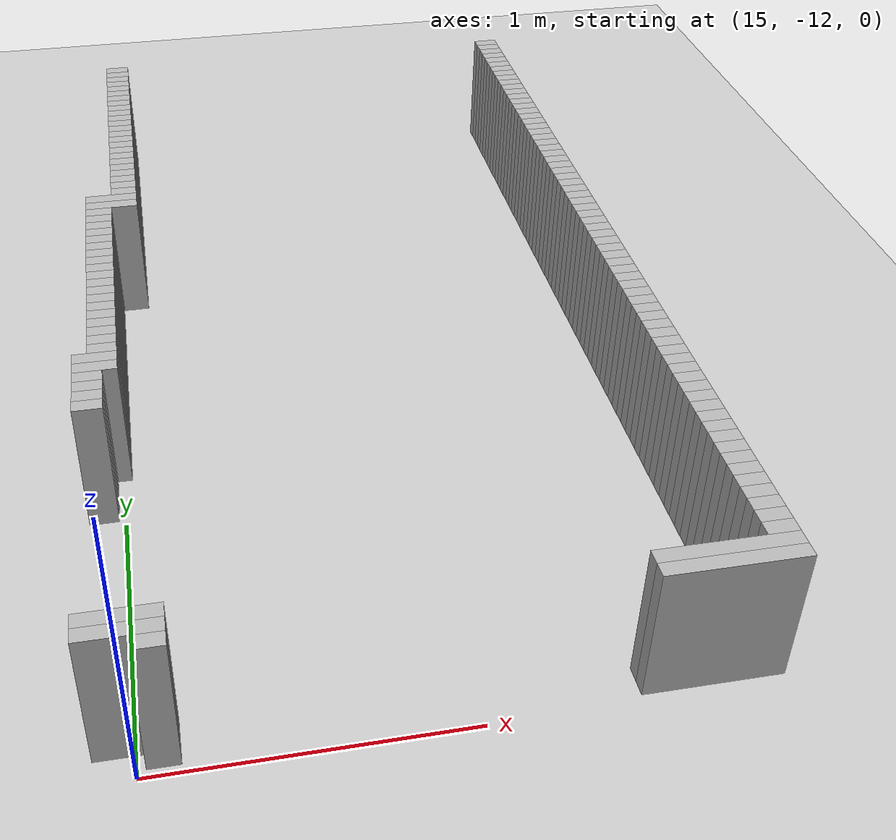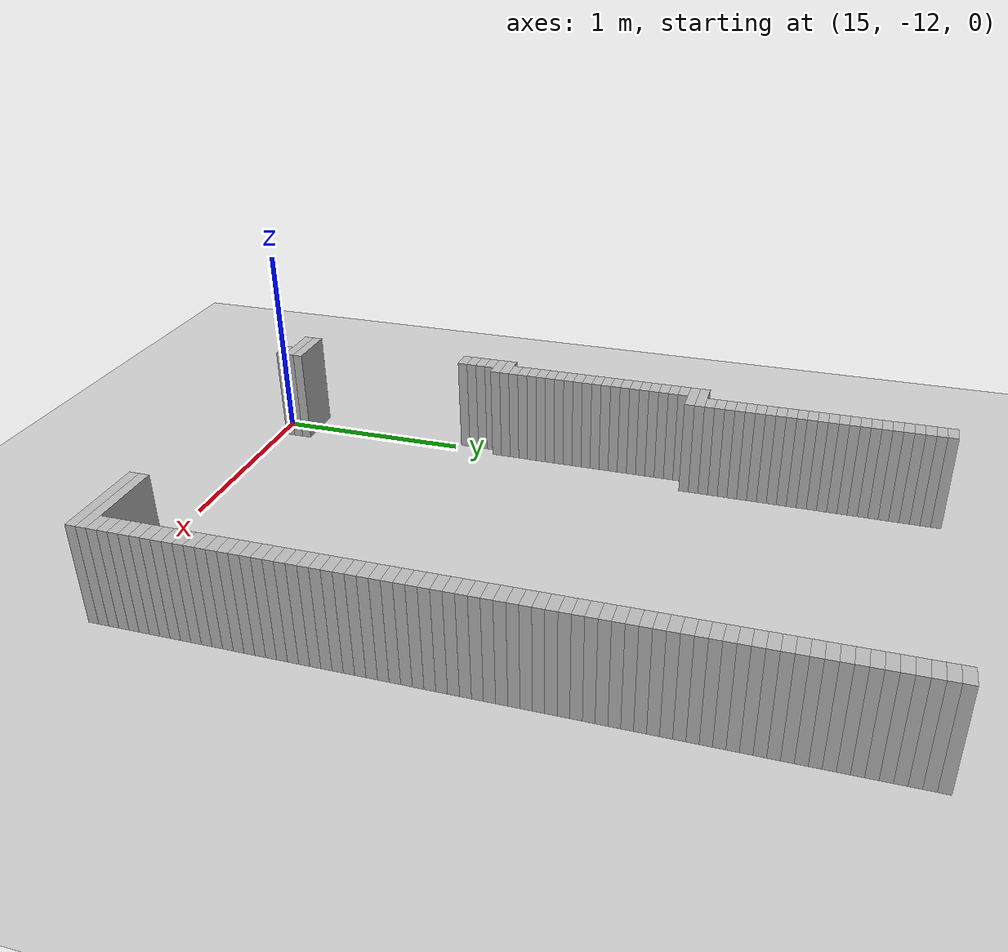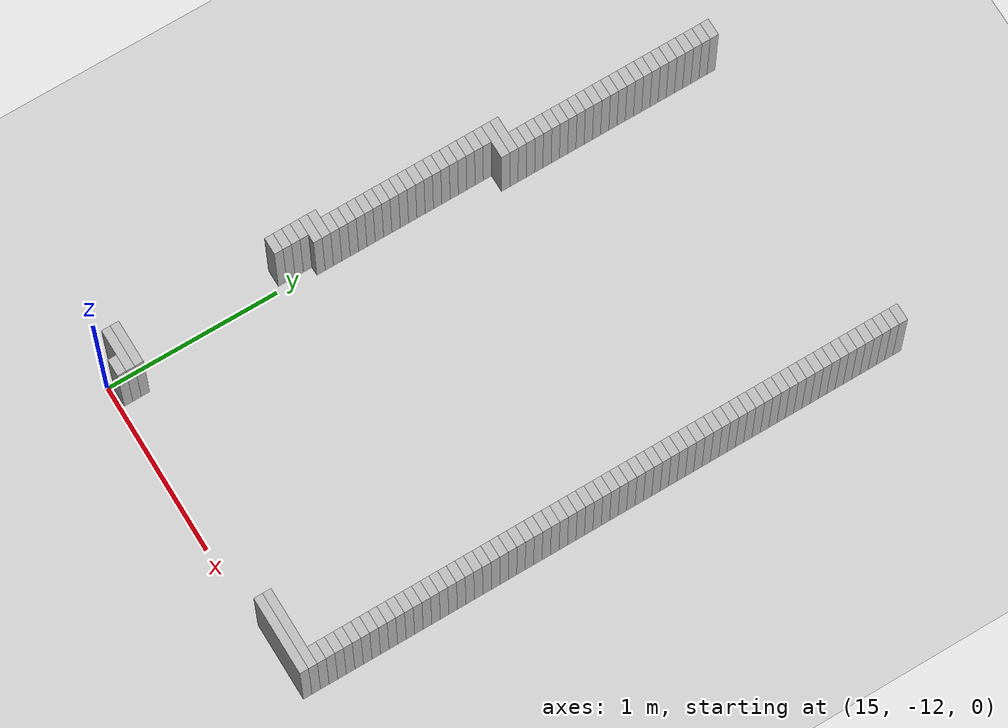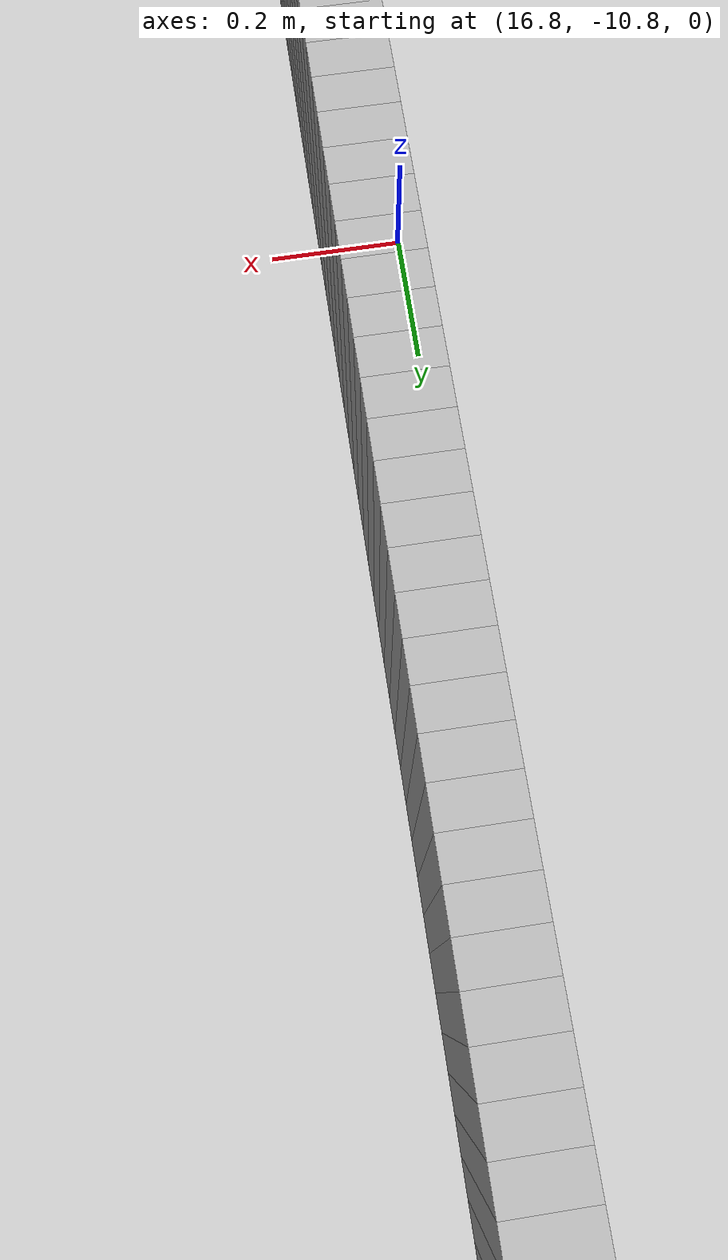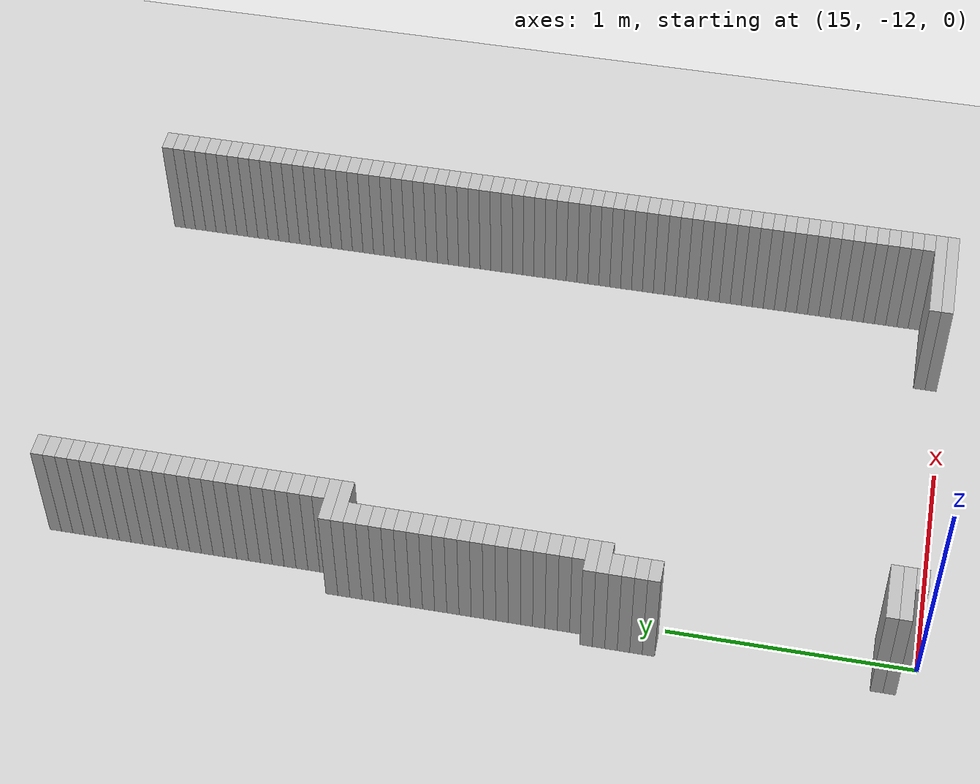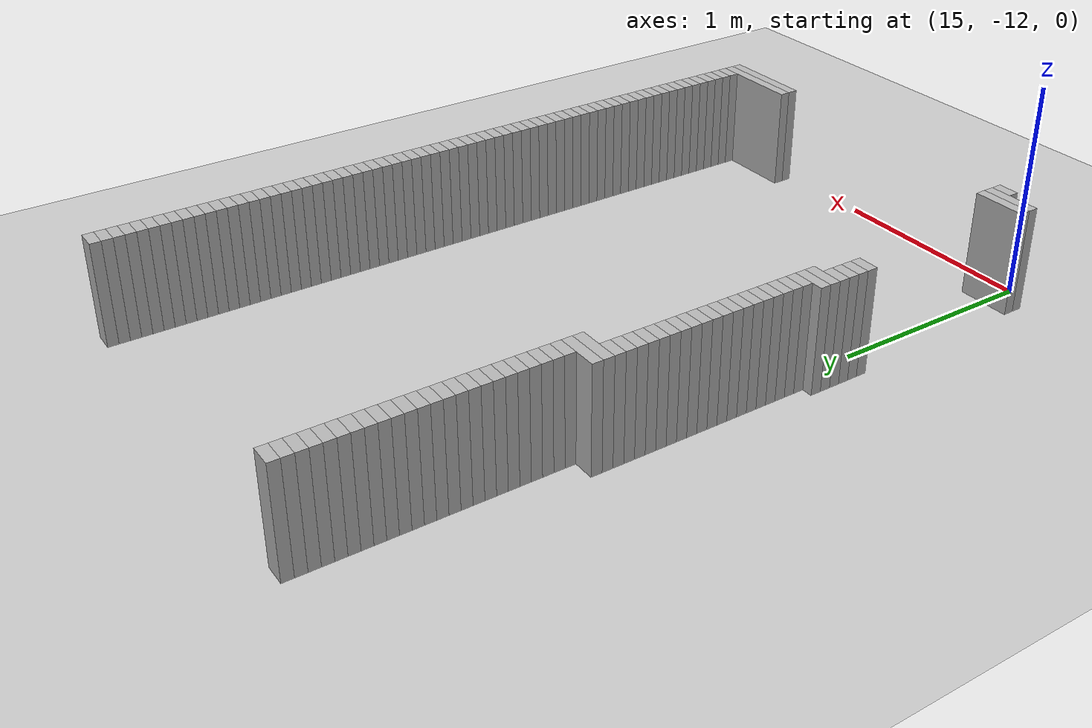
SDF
<sdf version="1.6">
 <world name="optimized_map_world">
  <include><uri>model://sun</uri></include>
  <include><uri>model://ground_plane</uri></include>
  <model name="obstacle_708">
   <static>true</static>
   <link name="link">
    <collision name="collision"><geometry><box><size>0.1 0.05 0.5</size></box></geometry></collision>
    <visual name="visual"><geometry><box><size>0.1 0.05 0.5</size></box></geometry></visual>
   </link>
   <pose>15.075000000000003 -8.45 0.25 0 0 0</pose>
  </model>
  <model name="obstacle_709">
   <static>true</static>
   <link name="link">
    <collision name="collision"><geometry><box><size>0.1 0.05 0.5</size></box></geometry></collision>
    <visual name="visual"><geometry><box><size>0.1 0.05 0.5</size></box></geometry></visual>
   </link>
   <pose>16.875000000000004 -8.45 0.25 0 0 0</pose>
  </model>
  <model name="obstacle_712">
   <static>true</static>
   <link name="link">
    <collision name="collision"><geometry><box><size>0.1 0.05 0.5</size></box></geometry></collision>
    <visual name="visual"><geometry><box><size>0.1 0.05 0.5</size></box></geometry></visual>
   </link>
   <pose>15.075000000000003 -8.5 0.25 0 0 0</pose>
  </model>
  <model name="obstacle_713">
   <static>true</static>
   <link name="link">
    <collision name="collision"><geometry><box><size>0.1 0.05 0.5</size></box></geometry></collision>
    <visual name="visual"><geometry><box><size>0.1 0.05 0.5</size></box></geometry></visual>
   </link>
   <pose>16.875000000000004 -8.5 0.25 0 0 0</pose>
  </model>
  <model name="obstacle_716">
   <static>true</static>
   <link name="link">
    <collision name="collision"><geometry><box><size>0.1 0.05 0.5</size></box></geometry></collision>
    <visual name="visual"><geometry><box><size>0.1 0.05 0.5</size></box></geometry></visual>
   </link>
   <pose>15.075000000000003 -8.55 0.25 0 0 0</pose>
  </model>
  <model name="obstacle_717">
   <static>true</static>
   <link name="link">
    <collision name="collision"><geometry><box><size>0.1 0.05 0.5</size></box></geometry></collision>
    <visual name="visual"><geometry><box><size>0.1 0.05 0.5</size></box></geometry></visual>
   </link>
   <pose>16.875000000000004 -8.55 0.25 0 0 0</pose>
  </model>
  <model name="obstacle_720">
   <static>true</static>
   <link name="link">
    <collision name="collision"><geometry><box><size>0.1 0.05 0.5</size></box></geometry></collision>
    <visual name="visual"><geometry><box><size>0.1 0.05 0.5</size></box></geometry></visual>
   </link>
   <pose>15.075000000000003 -8.6 0.25 0 0 0</pose>
  </model>
  <model name="obstacle_721">
   <static>true</static>
   <link name="link">
    <collision name="collision"><geometry><box><size>0.1 0.05 0.5</size></box></geometry></collision>
    <visual name="visual"><geometry><box><size>0.1 0.05 0.5</size></box></geometry></visual>
   </link>
   <pose>16.875000000000004 -8.6 0.25 0 0 0</pose>
  </model>
  <model name="obstacle_724">
   <static>true</static>
   <link name="link">
    <collision name="collision"><geometry><box><size>0.1 0.05 0.5</size></box></geometry></collision>
    <visual name="visual"><geometry><box><size>0.1 0.05 0.5</size></box></geometry></visual>
   </link>
   <pose>15.075000000000003 -8.65 0.25 0 0 0</pose>
  </model>
  <model name="obstacle_725">
   <static>true</static>
   <link name="link">
    <collision name="collision"><geometry><box><size>0.1 0.05 0.5</size></box></geometry></collision>
    <visual name="visual"><geometry><box><size>0.1 0.05 0.5</size></box></geometry></visual>
   </link>
   <pose>16.875000000000004 -8.65 0.25 0 0 0</pose>
  </model>
  <model name="obstacle_728">
   <static>true</static>
   <link name="link">
    <collision name="collision"><geometry><box><size>0.1 0.05 0.5</size></box></geometry></collision>
    <visual name="visual"><geometry><box><size>0.1 0.05 0.5</size></box></geometry></visual>
   </link>
   <pose>15.075000000000003 -8.7 0.25 0 0 0</pose>
  </model>
  <model name="obstacle_729">
   <static>true</static>
   <link name="link">
    <collision name="collision"><geometry><box><size>0.1 0.05 0.5</size></box></geometry></collision>
    <visual name="visual"><geometry><box><size>0.1 0.05 0.5</size></box></geometry></visual>
   </link>
   <pose>16.875000000000004 -8.7 0.25 0 0 0</pose>
  </model>
  <model name="obstacle_732">
   <static>true</static>
   <link name="link">
    <collision name="collision"><geometry><box><size>0.1 0.05 0.5</size></box></geometry></collision>
    <visual name="visual"><geometry><box><size>0.1 0.05 0.5</size></box></geometry></visual>
   </link>
   <pose>15.075000000000003 -8.75 0.25 0 0 0</pose>
  </model>
  <model name="obstacle_733">
   <static>true</static>
   <link name="link">
    <collision name="collision"><geometry><box><size>0.1 0.05 0.5</size></box></geometry></collision>
    <visual name="visual"><geometry><box><size>0.1 0.05 0.5</size></box></geometry></visual>
   </link>
   <pose>16.875000000000004 -8.75 0.25 0 0 0</pose>
  </model>
  <model name="obstacle_736">
   <static>true</static>
   <link name="link">
    <collision name="collision"><geometry><box><size>0.1 0.05 0.5</size></box></geometry></collision>
    <visual name="visual"><geometry><box><size>0.1 0.05 0.5</size></box></geometry></visual>
   </link>
   <pose>15.075000000000003 -8.8 0.25 0 0 0</pose>
  </model>
  <model name="obstacle_737">
   <static>true</static>
   <link name="link">
    <collision name="collision"><geometry><box><size>0.1 0.05 0.5</size></box></geometry></collision>
    <visual name="visual"><geometry><box><size>0.1 0.05 0.5</size></box></geometry></visual>
   </link>
   <pose>16.875000000000004 -8.8 0.25 0 0 0</pose>
  </model>
  <model name="obstacle_740">
   <static>true</static>
   <link name="link">
    <collision name="collision"><geometry><box><size>0.1 0.05 0.5</size></box></geometry></collision>
    <visual name="visual"><geometry><box><size>0.1 0.05 0.5</size></box></geometry></visual>
   </link>
   <pose>15.075000000000003 -8.85 0.25 0 0 0</pose>
  </model>
  <model name="obstacle_741">
   <static>true</static>
   <link name="link">
    <collision name="collision"><geometry><box><size>0.1 0.05 0.5</size></box></geometry></collision>
    <visual name="visual"><geometry><box><size>0.1 0.05 0.5</size></box></geometry></visual>
   </link>
   <pose>16.875000000000004 -8.85 0.25 0 0 0</pose>
  </model>
  <model name="obstacle_744">
   <static>true</static>
   <link name="link">
    <collision name="collision"><geometry><box><size>0.1 0.05 0.5</size></box></geometry></collision>
    <visual name="visual"><geometry><box><size>0.1 0.05 0.5</size></box></geometry></visual>
   </link>
   <pose>15.075000000000003 -8.9 0.25 0 0 0</pose>
  </model>
  <model name="obstacle_745">
   <static>true</static>
   <link name="link">
    <collision name="collision"><geometry><box><size>0.1 0.05 0.5</size></box></geometry></collision>
    <visual name="visual"><geometry><box><size>0.1 0.05 0.5</size></box></geometry></visual>
   </link>
   <pose>16.875000000000004 -8.9 0.25 0 0 0</pose>
  </model>
  <model name="obstacle_748">
   <static>true</static>
   <link name="link">
    <collision name="collision"><geometry><box><size>0.1 0.05 0.5</size></box></geometry></collision>
    <visual name="visual"><geometry><box><size>0.1 0.05 0.5</size></box></geometry></visual>
   </link>
   <pose>15.075000000000003 -8.95 0.25 0 0 0</pose>
  </model>
  <model name="obstacle_749">
   <static>true</static>
   <link name="link">
    <collision name="collision"><geometry><box><size>0.1 0.05 0.5</size></box></geometry></collision>
    <visual name="visual"><geometry><box><size>0.1 0.05 0.5</size></box></geometry></visual>
   </link>
   <pose>16.875000000000004 -8.95 0.25 0 0 0</pose>
  </model>
  <model name="obstacle_752">
   <static>true</static>
   <link name="link">
    <collision name="collision"><geometry><box><size>0.1 0.05 0.5</size></box></geometry></collision>
    <visual name="visual"><geometry><box><size>0.1 0.05 0.5</size></box></geometry></visual>
   </link>
   <pose>15.075000000000003 -9.0 0.25 0 0 0</pose>
  </model>
  <model name="obstacle_753">
   <static>true</static>
   <link name="link">
    <collision name="collision"><geometry><box><size>0.1 0.05 0.5</size></box></geometry></collision>
    <visual name="visual"><geometry><box><size>0.1 0.05 0.5</size></box></geometry></visual>
   </link>
   <pose>16.875000000000004 -9.0 0.25 0 0 0</pose>
  </model>
  <model name="obstacle_756">
   <static>true</static>
   <link name="link">
    <collision name="collision"><geometry><box><size>0.1 0.05 0.5</size></box></geometry></collision>
    <visual name="visual"><geometry><box><size>0.1 0.05 0.5</size></box></geometry></visual>
   </link>
   <pose>15.075000000000003 -9.05 0.25 0 0 0</pose>
  </model>
  <model name="obstacle_757">
   <static>true</static>
   <link name="link">
    <collision name="collision"><geometry><box><size>0.1 0.05 0.5</size></box></geometry></collision>
    <visual name="visual"><geometry><box><size>0.1 0.05 0.5</size></box></geometry></visual>
   </link>
   <pose>16.875000000000004 -9.05 0.25 0 0 0</pose>
  </model>
  <model name="obstacle_760">
   <static>true</static>
   <link name="link">
    <collision name="collision"><geometry><box><size>0.1 0.05 0.5</size></box></geometry></collision>
    <visual name="visual"><geometry><box><size>0.1 0.05 0.5</size></box></geometry></visual>
   </link>
   <pose>15.075000000000003 -9.1 0.25 0 0 0</pose>
  </model>
  <model name="obstacle_761">
   <static>true</static>
   <link name="link">
    <collision name="collision"><geometry><box><size>0.1 0.05 0.5</size></box></geometry></collision>
    <visual name="visual"><geometry><box><size>0.1 0.05 0.5</size></box></geometry></visual>
   </link>
   <pose>16.875000000000004 -9.1 0.25 0 0 0</pose>
  </model>
  <model name="obstacle_764">
   <static>true</static>
   <link name="link">
    <collision name="collision"><geometry><box><size>0.1 0.05 0.5</size></box></geometry></collision>
    <visual name="visual"><geometry><box><size>0.1 0.05 0.5</size></box></geometry></visual>
   </link>
   <pose>15.075000000000003 -9.15 0.25 0 0 0</pose>
  </model>
  <model name="obstacle_765">
   <static>true</static>
   <link name="link">
    <collision name="collision"><geometry><box><size>0.1 0.05 0.5</size></box></geometry></collision>
    <visual name="visual"><geometry><box><size>0.1 0.05 0.5</size></box></geometry></visual>
   </link>
   <pose>16.875000000000004 -9.15 0.25 0 0 0</pose>
  </model>
  <model name="obstacle_768">
   <static>true</static>
   <link name="link">
    <collision name="collision"><geometry><box><size>0.1 0.05 0.5</size></box></geometry></collision>
    <visual name="visual"><geometry><box><size>0.1 0.05 0.5</size></box></geometry></visual>
   </link>
   <pose>15.075000000000003 -9.2 0.25 0 0 0</pose>
  </model>
  <model name="obstacle_769">
   <static>true</static>
   <link name="link">
    <collision name="collision"><geometry><box><size>0.1 0.05 0.5</size></box></geometry></collision>
    <visual name="visual"><geometry><box><size>0.1 0.05 0.5</size></box></geometry></visual>
   </link>
   <pose>16.875000000000004 -9.2 0.25 0 0 0</pose>
  </model>
  <model name="obstacle_772">
   <static>true</static>
   <link name="link">
    <collision name="collision"><geometry><box><size>0.1 0.05 0.5</size></box></geometry></collision>
    <visual name="visual"><geometry><box><size>0.1 0.05 0.5</size></box></geometry></visual>
   </link>
   <pose>15.075000000000003 -9.25 0.25 0 0 0</pose>
  </model>
  <model name="obstacle_773">
   <static>true</static>
   <link name="link">
    <collision name="collision"><geometry><box><size>0.1 0.05 0.5</size></box></geometry></collision>
    <visual name="visual"><geometry><box><size>0.1 0.05 0.5</size></box></geometry></visual>
   </link>
   <pose>16.875000000000004 -9.25 0.25 0 0 0</pose>
  </model>
  <model name="obstacle_776">
   <static>true</static>
   <link name="link">
    <collision name="collision"><geometry><box><size>0.1 0.05 0.5</size></box></geometry></collision>
    <visual name="visual"><geometry><box><size>0.1 0.05 0.5</size></box></geometry></visual>
   </link>
   <pose>15.075000000000003 -9.3 0.25 0 0 0</pose>
  </model>
  <model name="obstacle_777">
   <static>true</static>
   <link name="link">
    <collision name="collision"><geometry><box><size>0.1 0.05 0.5</size></box></geometry></collision>
    <visual name="visual"><geometry><box><size>0.1 0.05 0.5</size></box></geometry></visual>
   </link>
   <pose>16.875000000000004 -9.3 0.25 0 0 0</pose>
  </model>
  <model name="obstacle_780">
   <static>true</static>
   <link name="link">
    <collision name="collision"><geometry><box><size>0.1 0.05 0.5</size></box></geometry></collision>
    <visual name="visual"><geometry><box><size>0.1 0.05 0.5</size></box></geometry></visual>
   </link>
   <pose>15.075000000000003 -9.35 0.25 0 0 0</pose>
  </model>
  <model name="obstacle_781">
   <static>true</static>
   <link name="link">
    <collision name="collision"><geometry><box><size>0.1 0.05 0.5</size></box></geometry></collision>
    <visual name="visual"><geometry><box><size>0.1 0.05 0.5</size></box></geometry></visual>
   </link>
   <pose>16.875000000000004 -9.35 0.25 0 0 0</pose>
  </model>
  <model name="obstacle_784">
   <static>true</static>
   <link name="link">
    <collision name="collision"><geometry><box><size>0.1 0.05 0.5</size></box></geometry></collision>
    <visual name="visual"><geometry><box><size>0.1 0.05 0.5</size></box></geometry></visual>
   </link>
   <pose>15.075000000000003 -9.4 0.25 0 0 0</pose>
  </model>
  <model name="obstacle_785">
   <static>true</static>
   <link name="link">
    <collision name="collision"><geometry><box><size>0.1 0.05 0.5</size></box></geometry></collision>
    <visual name="visual"><geometry><box><size>0.1 0.05 0.5</size></box></geometry></visual>
   </link>
   <pose>16.875000000000004 -9.4 0.25 0 0 0</pose>
  </model>
  <model name="obstacle_788">
   <static>true</static>
   <link name="link">
    <collision name="collision"><geometry><box><size>0.1 0.05 0.5</size></box></geometry></collision>
    <visual name="visual"><geometry><box><size>0.1 0.05 0.5</size></box></geometry></visual>
   </link>
   <pose>15.075000000000003 -9.45 0.25 0 0 0</pose>
  </model>
  <model name="obstacle_789">
   <static>true</static>
   <link name="link">
    <collision name="collision"><geometry><box><size>0.1 0.05 0.5</size></box></geometry></collision>
    <visual name="visual"><geometry><box><size>0.1 0.05 0.5</size></box></geometry></visual>
   </link>
   <pose>16.875000000000004 -9.45 0.25 0 0 0</pose>
  </model>
  <model name="obstacle_792">
   <static>true</static>
   <link name="link">
    <collision name="collision"><geometry><box><size>0.1 0.05 0.5</size></box></geometry></collision>
    <visual name="visual"><geometry><box><size>0.1 0.05 0.5</size></box></geometry></visual>
   </link>
   <pose>15.075000000000003 -9.5 0.25 0 0 0</pose>
  </model>
  <model name="obstacle_793">
   <static>true</static>
   <link name="link">
    <collision name="collision"><geometry><box><size>0.1 0.05 0.5</size></box></geometry></collision>
    <visual name="visual"><geometry><box><size>0.1 0.05 0.5</size></box></geometry></visual>
   </link>
   <pose>16.875000000000004 -9.5 0.25 0 0 0</pose>
  </model>
  <model name="obstacle_796">
   <static>true</static>
   <link name="link">
    <collision name="collision"><geometry><box><size>0.1 0.05 0.5</size></box></geometry></collision>
    <visual name="visual"><geometry><box><size>0.1 0.05 0.5</size></box></geometry></visual>
   </link>
   <pose>15.075000000000003 -9.55 0.25 0 0 0</pose>
  </model>
  <model name="obstacle_797">
   <static>true</static>
   <link name="link">
    <collision name="collision"><geometry><box><size>0.1 0.05 0.5</size></box></geometry></collision>
    <visual name="visual"><geometry><box><size>0.1 0.05 0.5</size></box></geometry></visual>
   </link>
   <pose>16.875000000000004 -9.55 0.25 0 0 0</pose>
  </model>
  <model name="obstacle_800">
   <static>true</static>
   <link name="link">
    <collision name="collision"><geometry><box><size>0.1 0.05 0.5</size></box></geometry></collision>
    <visual name="visual"><geometry><box><size>0.1 0.05 0.5</size></box></geometry></visual>
   </link>
   <pose>15.075000000000003 -9.6 0.25 0 0 0</pose>
  </model>
  <model name="obstacle_801">
   <static>true</static>
   <link name="link">
    <collision name="collision"><geometry><box><size>0.1 0.05 0.5</size></box></geometry></collision>
    <visual name="visual"><geometry><box><size>0.1 0.05 0.5</size></box></geometry></visual>
   </link>
   <pose>16.875000000000004 -9.6 0.25 0 0 0</pose>
  </model>
  <model name="obstacle_804">
   <static>true</static>
   <link name="link">
    <collision name="collision"><geometry><box><size>0.2 0.05 0.5</size></box></geometry></collision>
    <visual name="visual"><geometry><box><size>0.2 0.05 0.5</size></box></geometry></visual>
   </link>
   <pose>15.025000000000002 -9.65 0.25 0 0 0</pose>
  </model>
  <model name="obstacle_805">
   <static>true</static>
   <link name="link">
    <collision name="collision"><geometry><box><size>0.1 0.05 0.5</size></box></geometry></collision>
    <visual name="visual"><geometry><box><size>0.1 0.05 0.5</size></box></geometry></visual>
   </link>
   <pose>16.875000000000004 -9.65 0.25 0 0 0</pose>
  </model>
  <model name="obstacle_808">
   <static>true</static>
   <link name="link">
    <collision name="collision"><geometry><box><size>0.2 0.05 0.5</size></box></geometry></collision>
    <visual name="visual"><geometry><box><size>0.2 0.05 0.5</size></box></geometry></visual>
   </link>
   <pose>15.025000000000002 -9.7 0.25 0 0 0</pose>
  </model>
  <model name="obstacle_809">
   <static>true</static>
   <link name="link">
    <collision name="collision"><geometry><box><size>0.1 0.05 0.5</size></box></geometry></collision>
    <visual name="visual"><geometry><box><size>0.1 0.05 0.5</size></box></geometry></visual>
   </link>
   <pose>16.875000000000004 -9.7 0.25 0 0 0</pose>
  </model>
  <model name="obstacle_812">
   <static>true</static>
   <link name="link">
    <collision name="collision"><geometry><box><size>0.1 0.05 0.5</size></box></geometry></collision>
    <visual name="visual"><geometry><box><size>0.1 0.05 0.5</size></box></geometry></visual>
   </link>
   <pose>14.975000000000001 -9.75 0.25 0 0 0</pose>
  </model>
  <model name="obstacle_813">
   <static>true</static>
   <link name="link">
    <collision name="collision"><geometry><box><size>0.1 0.05 0.5</size></box></geometry></collision>
    <visual name="visual"><geometry><box><size>0.1 0.05 0.5</size></box></geometry></visual>
   </link>
   <pose>16.875000000000004 -9.75 0.25 0 0 0</pose>
  </model>
  <model name="obstacle_816">
   <static>true</static>
   <link name="link">
    <collision name="collision"><geometry><box><size>0.1 0.05 0.5</size></box></geometry></collision>
    <visual name="visual"><geometry><box><size>0.1 0.05 0.5</size></box></geometry></visual>
   </link>
   <pose>14.975000000000001 -9.8 0.25 0 0 0</pose>
  </model>
  <model name="obstacle_817">
   <static>true</static>
   <link name="link">
    <collision name="collision"><geometry><box><size>0.1 0.05 0.5</size></box></geometry></collision>
    <visual name="visual"><geometry><box><size>0.1 0.05 0.5</size></box></geometry></visual>
   </link>
   <pose>16.875000000000004 -9.8 0.25 0 0 0</pose>
  </model>
  <model name="obstacle_820">
   <static>true</static>
   <link name="link">
    <collision name="collision"><geometry><box><size>0.1 0.05 0.5</size></box></geometry></collision>
    <visual name="visual"><geometry><box><size>0.1 0.05 0.5</size></box></geometry></visual>
   </link>
   <pose>14.975000000000001 -9.85 0.25 0 0 0</pose>
  </model>
  <model name="obstacle_821">
   <static>true</static>
   <link name="link">
    <collision name="collision"><geometry><box><size>0.1 0.05 0.5</size></box></geometry></collision>
    <visual name="visual"><geometry><box><size>0.1 0.05 0.5</size></box></geometry></visual>
   </link>
   <pose>16.875000000000004 -9.85 0.25 0 0 0</pose>
  </model>
  <model name="obstacle_824">
   <static>true</static>
   <link name="link">
    <collision name="collision"><geometry><box><size>0.1 0.05 0.5</size></box></geometry></collision>
    <visual name="visual"><geometry><box><size>0.1 0.05 0.5</size></box></geometry></visual>
   </link>
   <pose>14.975000000000001 -9.9 0.25 0 0 0</pose>
  </model>
  <model name="obstacle_825">
   <static>true</static>
   <link name="link">
    <collision name="collision"><geometry><box><size>0.1 0.05 0.5</size></box></geometry></collision>
    <visual name="visual"><geometry><box><size>0.1 0.05 0.5</size></box></geometry></visual>
   </link>
   <pose>16.875000000000004 -9.9 0.25 0 0 0</pose>
  </model>
  <model name="obstacle_828">
   <static>true</static>
   <link name="link">
    <collision name="collision"><geometry><box><size>0.1 0.05 0.5</size></box></geometry></collision>
    <visual name="visual"><geometry><box><size>0.1 0.05 0.5</size></box></geometry></visual>
   </link>
   <pose>14.975000000000001 -9.95 0.25 0 0 0</pose>
  </model>
  <model name="obstacle_829">
   <static>true</static>
   <link name="link">
    <collision name="collision"><geometry><box><size>0.1 0.05 0.5</size></box></geometry></collision>
    <visual name="visual"><geometry><box><size>0.1 0.05 0.5</size></box></geometry></visual>
   </link>
   <pose>16.875000000000004 -9.95 0.25 0 0 0</pose>
  </model>
  <model name="obstacle_832">
   <static>true</static>
   <link name="link">
    <collision name="collision"><geometry><box><size>0.1 0.05 0.5</size></box></geometry></collision>
    <visual name="visual"><geometry><box><size>0.1 0.05 0.5</size></box></geometry></visual>
   </link>
   <pose>14.975000000000001 -10.0 0.25 0 0 0</pose>
  </model>
  <model name="obstacle_833">
   <static>true</static>
   <link name="link">
    <collision name="collision"><geometry><box><size>0.1 0.05 0.5</size></box></geometry></collision>
    <visual name="visual"><geometry><box><size>0.1 0.05 0.5</size></box></geometry></visual>
   </link>
   <pose>16.875000000000004 -10.0 0.25 0 0 0</pose>
  </model>
  <model name="obstacle_836">
   <static>true</static>
   <link name="link">
    <collision name="collision"><geometry><box><size>0.1 0.05 0.5</size></box></geometry></collision>
    <visual name="visual"><geometry><box><size>0.1 0.05 0.5</size></box></geometry></visual>
   </link>
   <pose>14.975000000000001 -10.05 0.25 0 0 0</pose>
  </model>
  <model name="obstacle_837">
   <static>true</static>
   <link name="link">
    <collision name="collision"><geometry><box><size>0.1 0.05 0.5</size></box></geometry></collision>
    <visual name="visual"><geometry><box><size>0.1 0.05 0.5</size></box></geometry></visual>
   </link>
   <pose>16.875000000000004 -10.05 0.25 0 0 0</pose>
  </model>
  <model name="obstacle_840">
   <static>true</static>
   <link name="link">
    <collision name="collision"><geometry><box><size>0.1 0.05 0.5</size></box></geometry></collision>
    <visual name="visual"><geometry><box><size>0.1 0.05 0.5</size></box></geometry></visual>
   </link>
   <pose>14.975000000000001 -10.1 0.25 0 0 0</pose>
  </model>
  <model name="obstacle_841">
   <static>true</static>
   <link name="link">
    <collision name="collision"><geometry><box><size>0.1 0.05 0.5</size></box></geometry></collision>
    <visual name="visual"><geometry><box><size>0.1 0.05 0.5</size></box></geometry></visual>
   </link>
   <pose>16.875000000000004 -10.1 0.25 0 0 0</pose>
  </model>
  <model name="obstacle_844">
   <static>true</static>
   <link name="link">
    <collision name="collision"><geometry><box><size>0.1 0.05 0.5</size></box></geometry></collision>
    <visual name="visual"><geometry><box><size>0.1 0.05 0.5</size></box></geometry></visual>
   </link>
   <pose>14.975000000000001 -10.15 0.25 0 0 0</pose>
  </model>
  <model name="obstacle_845">
   <static>true</static>
   <link name="link">
    <collision name="collision"><geometry><box><size>0.1 0.05 0.5</size></box></geometry></collision>
    <visual name="visual"><geometry><box><size>0.1 0.05 0.5</size></box></geometry></visual>
   </link>
   <pose>16.875000000000004 -10.15 0.25 0 0 0</pose>
  </model>
  <model name="obstacle_848">
   <static>true</static>
   <link name="link">
    <collision name="collision"><geometry><box><size>0.1 0.05 0.5</size></box></geometry></collision>
    <visual name="visual"><geometry><box><size>0.1 0.05 0.5</size></box></geometry></visual>
   </link>
   <pose>14.975000000000001 -10.2 0.25 0 0 0</pose>
  </model>
  <model name="obstacle_849">
   <static>true</static>
   <link name="link">
    <collision name="collision"><geometry><box><size>0.1 0.05 0.5</size></box></geometry></collision>
    <visual name="visual"><geometry><box><size>0.1 0.05 0.5</size></box></geometry></visual>
   </link>
   <pose>16.875000000000004 -10.2 0.25 0 0 0</pose>
  </model>
  <model name="obstacle_852">
   <static>true</static>
   <link name="link">
    <collision name="collision"><geometry><box><size>0.1 0.05 0.5</size></box></geometry></collision>
    <visual name="visual"><geometry><box><size>0.1 0.05 0.5</size></box></geometry></visual>
   </link>
   <pose>14.975000000000001 -10.25 0.25 0 0 0</pose>
  </model>
  <model name="obstacle_853">
   <static>true</static>
   <link name="link">
    <collision name="collision"><geometry><box><size>0.1 0.05 0.5</size></box></geometry></collision>
    <visual name="visual"><geometry><box><size>0.1 0.05 0.5</size></box></geometry></visual>
   </link>
   <pose>16.875000000000004 -10.25 0.25 0 0 0</pose>
  </model>
  <model name="obstacle_856">
   <static>true</static>
   <link name="link">
    <collision name="collision"><geometry><box><size>0.1 0.05 0.5</size></box></geometry></collision>
    <visual name="visual"><geometry><box><size>0.1 0.05 0.5</size></box></geometry></visual>
   </link>
   <pose>14.975000000000001 -10.3 0.25 0 0 0</pose>
  </model>
  <model name="obstacle_857">
   <static>true</static>
   <link name="link">
    <collision name="collision"><geometry><box><size>0.1 0.05 0.5</size></box></geometry></collision>
    <visual name="visual"><geometry><box><size>0.1 0.05 0.5</size></box></geometry></visual>
   </link>
   <pose>16.875000000000004 -10.3 0.25 0 0 0</pose>
  </model>
  <model name="obstacle_860">
   <static>true</static>
   <link name="link">
    <collision name="collision"><geometry><box><size>0.1 0.05 0.5</size></box></geometry></collision>
    <visual name="visual"><geometry><box><size>0.1 0.05 0.5</size></box></geometry></visual>
   </link>
   <pose>14.975000000000001 -10.35 0.25 0 0 0</pose>
  </model>
  <model name="obstacle_861">
   <static>true</static>
   <link name="link">
    <collision name="collision"><geometry><box><size>0.1 0.05 0.5</size></box></geometry></collision>
    <visual name="visual"><geometry><box><size>0.1 0.05 0.5</size></box></geometry></visual>
   </link>
   <pose>16.875000000000004 -10.35 0.25 0 0 0</pose>
  </model>
  <model name="obstacle_864">
   <static>true</static>
   <link name="link">
    <collision name="collision"><geometry><box><size>0.1 0.05 0.5</size></box></geometry></collision>
    <visual name="visual"><geometry><box><size>0.1 0.05 0.5</size></box></geometry></visual>
   </link>
   <pose>14.975000000000001 -10.4 0.25 0 0 0</pose>
  </model>
  <model name="obstacle_865">
   <static>true</static>
   <link name="link">
    <collision name="collision"><geometry><box><size>0.1 0.05 0.5</size></box></geometry></collision>
    <visual name="visual"><geometry><box><size>0.1 0.05 0.5</size></box></geometry></visual>
   </link>
   <pose>16.875000000000004 -10.4 0.25 0 0 0</pose>
  </model>
  <model name="obstacle_868">
   <static>true</static>
   <link name="link">
    <collision name="collision"><geometry><box><size>0.1 0.05 0.5</size></box></geometry></collision>
    <visual name="visual"><geometry><box><size>0.1 0.05 0.5</size></box></geometry></visual>
   </link>
   <pose>14.975000000000001 -10.45 0.25 0 0 0</pose>
  </model>
  <model name="obstacle_869">
   <static>true</static>
   <link name="link">
    <collision name="collision"><geometry><box><size>0.1 0.05 0.5</size></box></geometry></collision>
    <visual name="visual"><geometry><box><size>0.1 0.05 0.5</size></box></geometry></visual>
   </link>
   <pose>16.875000000000004 -10.45 0.25 0 0 0</pose>
  </model>
  <model name="obstacle_872">
   <static>true</static>
   <link name="link">
    <collision name="collision"><geometry><box><size>0.1 0.05 0.5</size></box></geometry></collision>
    <visual name="visual"><geometry><box><size>0.1 0.05 0.5</size></box></geometry></visual>
   </link>
   <pose>14.975000000000001 -10.5 0.25 0 0 0</pose>
  </model>
  <model name="obstacle_873">
   <static>true</static>
   <link name="link">
    <collision name="collision"><geometry><box><size>0.1 0.05 0.5</size></box></geometry></collision>
    <visual name="visual"><geometry><box><size>0.1 0.05 0.5</size></box></geometry></visual>
   </link>
   <pose>16.875000000000004 -10.5 0.25 0 0 0</pose>
  </model>
  <model name="obstacle_876">
   <static>true</static>
   <link name="link">
    <collision name="collision"><geometry><box><size>0.1 0.05 0.5</size></box></geometry></collision>
    <visual name="visual"><geometry><box><size>0.1 0.05 0.5</size></box></geometry></visual>
   </link>
   <pose>14.975000000000001 -10.55 0.25 0 0 0</pose>
  </model>
  <model name="obstacle_877">
   <static>true</static>
   <link name="link">
    <collision name="collision"><geometry><box><size>0.1 0.05 0.5</size></box></geometry></collision>
    <visual name="visual"><geometry><box><size>0.1 0.05 0.5</size></box></geometry></visual>
   </link>
   <pose>16.875000000000004 -10.55 0.25 0 0 0</pose>
  </model>
  <model name="obstacle_880">
   <static>true</static>
   <link name="link">
    <collision name="collision"><geometry><box><size>0.1 0.05 0.5</size></box></geometry></collision>
    <visual name="visual"><geometry><box><size>0.1 0.05 0.5</size></box></geometry></visual>
   </link>
   <pose>14.975000000000001 -10.6 0.25 0 0 0</pose>
  </model>
  <model name="obstacle_881">
   <static>true</static>
   <link name="link">
    <collision name="collision"><geometry><box><size>0.1 0.05 0.5</size></box></geometry></collision>
    <visual name="visual"><geometry><box><size>0.1 0.05 0.5</size></box></geometry></visual>
   </link>
   <pose>16.875000000000004 -10.6 0.25 0 0 0</pose>
  </model>
  <model name="obstacle_884">
   <static>true</static>
   <link name="link">
    <collision name="collision"><geometry><box><size>0.1 0.05 0.5</size></box></geometry></collision>
    <visual name="visual"><geometry><box><size>0.1 0.05 0.5</size></box></geometry></visual>
   </link>
   <pose>14.975000000000001 -10.65 0.25 0 0 0</pose>
  </model>
  <model name="obstacle_885">
   <static>true</static>
   <link name="link">
    <collision name="collision"><geometry><box><size>0.1 0.05 0.5</size></box></geometry></collision>
    <visual name="visual"><geometry><box><size>0.1 0.05 0.5</size></box></geometry></visual>
   </link>
   <pose>16.875000000000004 -10.65 0.25 0 0 0</pose>
  </model>
  <model name="obstacle_888">
   <static>true</static>
   <link name="link">
    <collision name="collision">
     <geometry><box><size>0.15000000000000002 0.05 0.5</size></box></geometry>
    </collision>
    <visual name="visual"><geometry><box><size>0.15000000000000002 0.05 0.5</size></box></geometry></visual>
   </link>
   <pose>14.950000000000003 -10.7 0.25 0 0 0</pose>
  </model>
  <model name="obstacle_889">
   <static>true</static>
   <link name="link">
    <collision name="collision"><geometry><box><size>0.1 0.05 0.5</size></box></geometry></collision>
    <visual name="visual"><geometry><box><size>0.1 0.05 0.5</size></box></geometry></visual>
   </link>
   <pose>16.875000000000004 -10.7 0.25 0 0 0</pose>
  </model>
  <model name="obstacle_892">
   <static>true</static>
   <link name="link">
    <collision name="collision">
     <geometry><box><size>0.15000000000000002 0.05 0.5</size></box></geometry>
    </collision>
    <visual name="visual"><geometry><box><size>0.15000000000000002 0.05 0.5</size></box></geometry></visual>
   </link>
   <pose>14.950000000000003 -10.75 0.25 0 0 0</pose>
  </model>
  <model name="obstacle_893">
   <static>true</static>
   <link name="link">
    <collision name="collision"><geometry><box><size>0.1 0.05 0.5</size></box></geometry></collision>
    <visual name="visual"><geometry><box><size>0.1 0.05 0.5</size></box></geometry></visual>
   </link>
   <pose>16.875000000000004 -10.75 0.25 0 0 0</pose>
  </model>
  <model name="obstacle_896">
   <static>true</static>
   <link name="link">
    <collision name="collision"><geometry><box><size>0.1 0.05 0.5</size></box></geometry></collision>
    <visual name="visual"><geometry><box><size>0.1 0.05 0.5</size></box></geometry></visual>
   </link>
   <pose>14.925 -10.8 0.25 0 0 0</pose>
  </model>
  <model name="obstacle_897">
   <static>true</static>
   <link name="link">
    <collision name="collision"><geometry><box><size>0.1 0.05 0.5</size></box></geometry></collision>
    <visual name="visual"><geometry><box><size>0.1 0.05 0.5</size></box></geometry></visual>
   </link>
   <pose>16.875000000000004 -10.8 0.25 0 0 0</pose>
  </model>
  <model name="obstacle_900">
   <static>true</static>
   <link name="link">
    <collision name="collision"><geometry><box><size>0.1 0.05 0.5</size></box></geometry></collision>
    <visual name="visual"><geometry><box><size>0.1 0.05 0.5</size></box></geometry></visual>
   </link>
   <pose>14.925 -10.85 0.25 0 0 0</pose>
  </model>
  <model name="obstacle_901">
   <static>true</static>
   <link name="link">
    <collision name="collision"><geometry><box><size>0.1 0.05 0.5</size></box></geometry></collision>
    <visual name="visual"><geometry><box><size>0.1 0.05 0.5</size></box></geometry></visual>
   </link>
   <pose>16.875000000000004 -10.85 0.25 0 0 0</pose>
  </model>
  <model name="obstacle_904">
   <static>true</static>
   <link name="link">
    <collision name="collision"><geometry><box><size>0.1 0.05 0.5</size></box></geometry></collision>
    <visual name="visual"><geometry><box><size>0.1 0.05 0.5</size></box></geometry></visual>
   </link>
   <pose>14.925 -10.9 0.25 0 0 0</pose>
  </model>
  <model name="obstacle_905">
   <static>true</static>
   <link name="link">
    <collision name="collision"><geometry><box><size>0.1 0.05 0.5</size></box></geometry></collision>
    <visual name="visual"><geometry><box><size>0.1 0.05 0.5</size></box></geometry></visual>
   </link>
   <pose>16.875000000000004 -10.9 0.25 0 0 0</pose>
  </model>
  <model name="obstacle_908">
   <static>true</static>
   <link name="link">
    <collision name="collision"><geometry><box><size>0.1 0.05 0.5</size></box></geometry></collision>
    <visual name="visual"><geometry><box><size>0.1 0.05 0.5</size></box></geometry></visual>
   </link>
   <pose>14.925 -10.950000000000001 0.25 0 0 0</pose>
  </model>
  <model name="obstacle_909">
   <static>true</static>
   <link name="link">
    <collision name="collision"><geometry><box><size>0.1 0.05 0.5</size></box></geometry></collision>
    <visual name="visual"><geometry><box><size>0.1 0.05 0.5</size></box></geometry></visual>
   </link>
   <pose>16.875000000000004 -10.950000000000001 0.25 0 0 0</pose>
  </model>
  <model name="obstacle_913">
   <static>true</static>
   <link name="link">
    <collision name="collision"><geometry><box><size>0.1 0.05 0.5</size></box></geometry></collision>
    <visual name="visual"><geometry><box><size>0.1 0.05 0.5</size></box></geometry></visual>
   </link>
   <pose>16.875000000000004 -11.0 0.25 0 0 0</pose>
  </model>
  <model name="obstacle_917">
   <static>true</static>
   <link name="link">
    <collision name="collision"><geometry><box><size>0.1 0.05 0.5</size></box></geometry></collision>
    <visual name="visual"><geometry><box><size>0.1 0.05 0.5</size></box></geometry></visual>
   </link>
   <pose>16.875000000000004 -11.05 0.25 0 0 0</pose>
  </model>
  <model name="obstacle_921">
   <static>true</static>
   <link name="link">
    <collision name="collision"><geometry><box><size>0.1 0.05 0.5</size></box></geometry></collision>
    <visual name="visual"><geometry><box><size>0.1 0.05 0.5</size></box></geometry></visual>
   </link>
   <pose>16.875000000000004 -11.1 0.25 0 0 0</pose>
  </model>
  <model name="obstacle_925">
   <static>true</static>
   <link name="link">
    <collision name="collision"><geometry><box><size>0.1 0.05 0.5</size></box></geometry></collision>
    <visual name="visual"><geometry><box><size>0.1 0.05 0.5</size></box></geometry></visual>
   </link>
   <pose>16.875000000000004 -11.15 0.25 0 0 0</pose>
  </model>
  <model name="obstacle_929">
   <static>true</static>
   <link name="link">
    <collision name="collision"><geometry><box><size>0.1 0.05 0.5</size></box></geometry></collision>
    <visual name="visual"><geometry><box><size>0.1 0.05 0.5</size></box></geometry></visual>
   </link>
   <pose>16.875000000000004 -11.200000000000001 0.25 0 0 0</pose>
  </model>
  <model name="obstacle_933">
   <static>true</static>
   <link name="link">
    <collision name="collision"><geometry><box><size>0.1 0.05 0.5</size></box></geometry></collision>
    <visual name="visual"><geometry><box><size>0.1 0.05 0.5</size></box></geometry></visual>
   </link>
   <pose>16.875000000000004 -11.25 0.25 0 0 0</pose>
  </model>
  <model name="obstacle_937">
   <static>true</static>
   <link name="link">
    <collision name="collision"><geometry><box><size>0.1 0.05 0.5</size></box></geometry></collision>
    <visual name="visual"><geometry><box><size>0.1 0.05 0.5</size></box></geometry></visual>
   </link>
   <pose>16.875000000000004 -11.3 0.25 0 0 0</pose>
  </model>
  <model name="obstacle_941">
   <static>true</static>
   <link name="link">
    <collision name="collision"><geometry><box><size>0.1 0.05 0.5</size></box></geometry></collision>
    <visual name="visual"><geometry><box><size>0.1 0.05 0.5</size></box></geometry></visual>
   </link>
   <pose>16.875000000000004 -11.35 0.25 0 0 0</pose>
  </model>
  <model name="obstacle_945">
   <static>true</static>
   <link name="link">
    <collision name="collision"><geometry><box><size>0.1 0.05 0.5</size></box></geometry></collision>
    <visual name="visual"><geometry><box><size>0.1 0.05 0.5</size></box></geometry></visual>
   </link>
   <pose>16.875000000000004 -11.4 0.25 0 0 0</pose>
  </model>
  <model name="obstacle_949">
   <static>true</static>
   <link name="link">
    <collision name="collision"><geometry><box><size>0.1 0.05 0.5</size></box></geometry></collision>
    <visual name="visual"><geometry><box><size>0.1 0.05 0.5</size></box></geometry></visual>
   </link>
   <pose>16.875000000000004 -11.450000000000001 0.25 0 0 0</pose>
  </model>
  <model name="obstacle_953">
   <static>true</static>
   <link name="link">
    <collision name="collision"><geometry><box><size>0.1 0.05 0.5</size></box></geometry></collision>
    <visual name="visual"><geometry><box><size>0.1 0.05 0.5</size></box></geometry></visual>
   </link>
   <pose>16.875000000000004 -11.5 0.25 0 0 0</pose>
  </model>
  <model name="obstacle_957">
   <static>true</static>
   <link name="link">
    <collision name="collision"><geometry><box><size>0.1 0.05 0.5</size></box></geometry></collision>
    <visual name="visual"><geometry><box><size>0.1 0.05 0.5</size></box></geometry></visual>
   </link>
   <pose>16.875000000000004 -11.55 0.25 0 0 0</pose>
  </model>
  <model name="obstacle_961">
   <static>true</static>
   <link name="link">
    <collision name="collision"><geometry><box><size>0.1 0.05 0.5</size></box></geometry></collision>
    <visual name="visual"><geometry><box><size>0.1 0.05 0.5</size></box></geometry></visual>
   </link>
   <pose>16.875000000000004 -11.6 0.25 0 0 0</pose>
  </model>
  <model name="obstacle_965">
   <static>true</static>
   <link name="link">
    <collision name="collision"><geometry><box><size>0.1 0.05 0.5</size></box></geometry></collision>
    <visual name="visual"><geometry><box><size>0.1 0.05 0.5</size></box></geometry></visual>
   </link>
   <pose>16.875000000000004 -11.65 0.25 0 0 0</pose>
  </model>
  <model name="obstacle_969">
   <static>true</static>
   <link name="link">
    <collision name="collision"><geometry><box><size>0.1 0.05 0.5</size></box></geometry></collision>
    <visual name="visual"><geometry><box><size>0.1 0.05 0.5</size></box></geometry></visual>
   </link>
   <pose>16.875000000000004 -11.700000000000001 0.25 0 0 0</pose>
  </model>
  <model name="obstacle_973">
   <static>true</static>
   <link name="link">
    <collision name="collision"><geometry><box><size>0.1 0.05 0.5</size></box></geometry></collision>
    <visual name="visual"><geometry><box><size>0.1 0.05 0.5</size></box></geometry></visual>
   </link>
   <pose>16.875000000000004 -11.75 0.25 0 0 0</pose>
  </model>
  <model name="obstacle_977">
   <static>true</static>
   <link name="link">
    <collision name="collision"><geometry><box><size>0.1 0.05 0.5</size></box></geometry></collision>
    <visual name="visual"><geometry><box><size>0.1 0.05 0.5</size></box></geometry></visual>
   </link>
   <pose>16.875000000000004 -11.8 0.25 0 0 0</pose>
  </model>
  <model name="obstacle_980">
   <static>true</static>
   <link name="link">
    <collision name="collision"><geometry><box><size>0.25 0.05 0.5</size></box></geometry></collision>
    <visual name="visual"><geometry><box><size>0.25 0.05 0.5</size></box></geometry></visual>
   </link>
   <pose>15.000000000000004 -11.85 0.25 0 0 0</pose>
  </model>
  <model name="obstacle_981">
   <static>true</static>
   <link name="link">
    <collision name="collision"><geometry><box><size>0.1 0.05 0.5</size></box></geometry></collision>
    <visual name="visual"><geometry><box><size>0.1 0.05 0.5</size></box></geometry></visual>
   </link>
   <pose>16.875000000000004 -11.85 0.25 0 0 0</pose>
  </model>
  <model name="obstacle_984">
   <static>true</static>
   <link name="link">
    <collision name="collision"><geometry><box><size>0.25 0.05 0.5</size></box></geometry></collision>
    <visual name="visual"><geometry><box><size>0.25 0.05 0.5</size></box></geometry></visual>
   </link>
   <pose>15.000000000000004 -11.9 0.25 0 0 0</pose>
  </model>
  <model name="obstacle_985">
   <static>true</static>
   <link name="link">
    <collision name="collision"><geometry><box><size>0.45 0.05 0.5</size></box></geometry></collision>
    <visual name="visual"><geometry><box><size>0.45 0.05 0.5</size></box></geometry></visual>
   </link>
   <pose>16.7 -11.9 0.25 0 0 0</pose>
  </model>
  <model name="obstacle_988">
   <static>true</static>
   <link name="link">
    <collision name="collision"><geometry><box><size>0.1 0.05 0.5</size></box></geometry></collision>
    <visual name="visual"><geometry><box><size>0.1 0.05 0.5</size></box></geometry></visual>
   </link>
   <pose>15.075000000000003 -11.950000000000001 0.25 0 0 0</pose>
  </model>
  <model name="obstacle_989">
   <static>true</static>
   <link name="link">
    <collision name="collision"><geometry><box><size>0.45 0.05 0.5</size></box></geometry></collision>
    <visual name="visual"><geometry><box><size>0.45 0.05 0.5</size></box></geometry></visual>
   </link>
   <pose>16.7 -11.950000000000001 0.25 0 0 0</pose>
  </model>
 </world>
</sdf>
